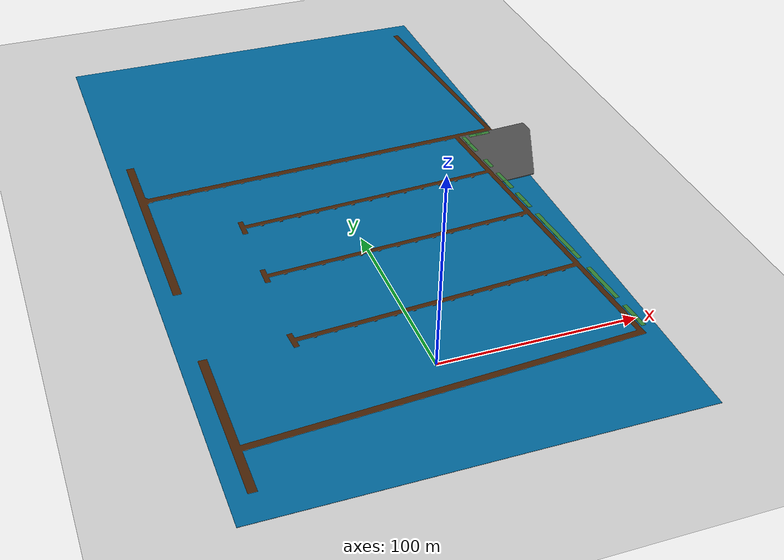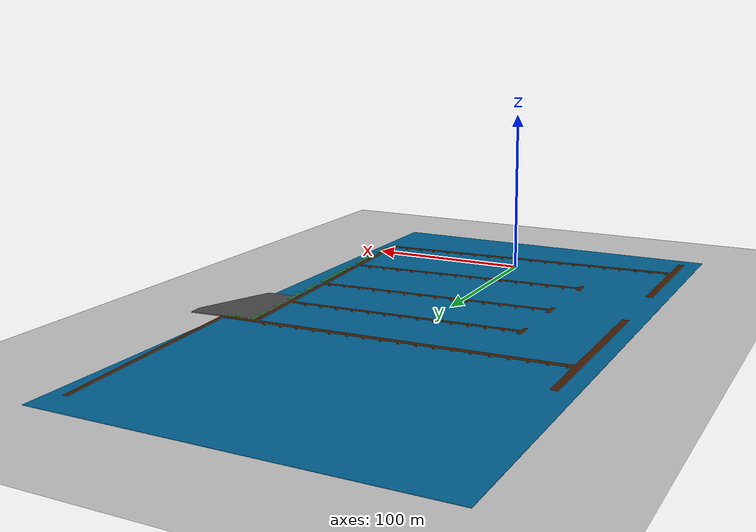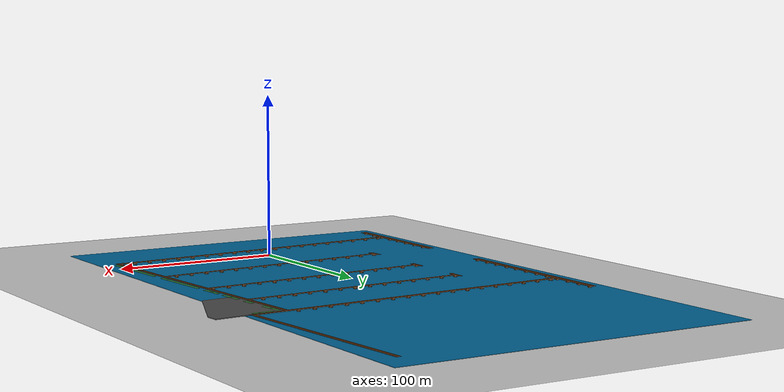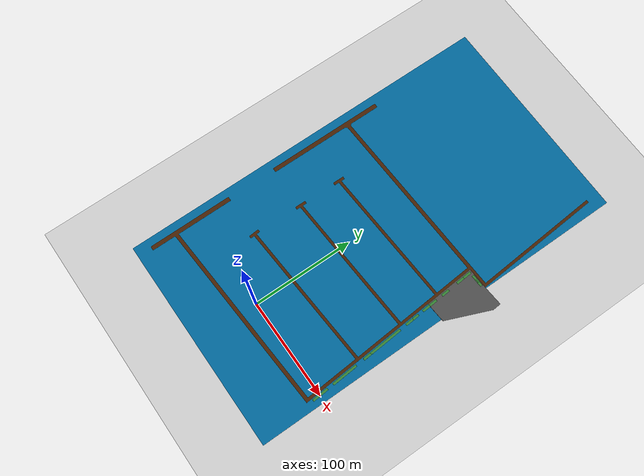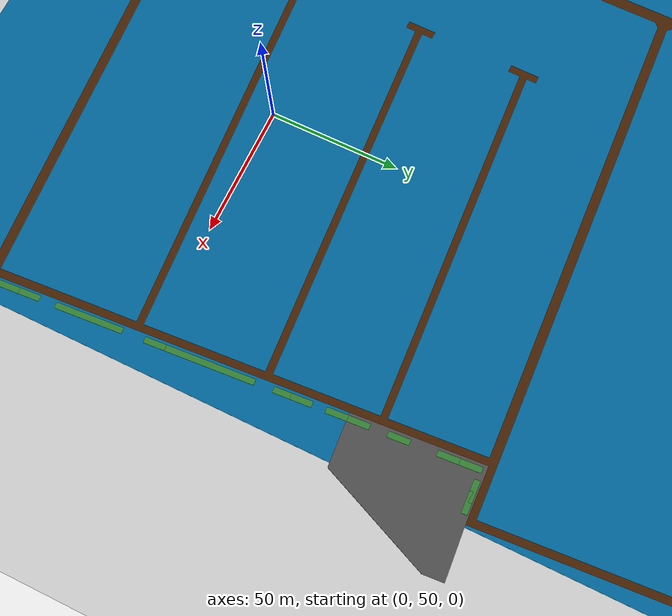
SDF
<?xml version='1.0'?>
<sdf version='1.7'>
  <model name="world_zona_A_environment">
    <static>true</static>
    <pose>0 0 0 0 0 0</pose>

    <include>
      <uri>/marinero_simulations/models/Marina_Zona_A</uri>
      <pose>-100.225000 -48.323200 0.08 0 0 0</pose>
    </include>

    <include>
      <uri>/marinero_simulations/models/sea_plane_A</uri>
      <pose>-1.12 126.455 0 0 0 0</pose>
    </include>

    <include>
      <uri>/marinero_simulations/models/asphalt_plane</uri>
      <name>asphalt_plane_0</name>
      <pose>105.656586 22.996641 0.0 0 0 -1.498</pose>
    </include>

    <include>
      <uri>/marinero_simulations/models/asphalt_plane</uri>
      <name>asphalt_plane_1</name>
      <pose>100.593285 92.427048 0.0 0 0 -1.498</pose>
    </include>

    <include>
      <uri>/marinero_simulations/models/asphalt_plane_angle_section</uri>
      <pose>96.411346 149.332382 0.0 0 0 0</pose>
    </include>

    <include>
      <uri>/marinero_simulations/models/asphalt_plane</uri>
      <name>asphalt_plane_2</name>
      <pose>113.067787 209.915146 0.0 0 0 -1.500000</pose>
    </include>

    <include>
      <uri>/marinero_simulations/models/asphalt_plane</uri>
      <name>asphalt_plane_3</name>
      <pose>108.119179 279.695282 0 0 0 -1.500000</pose>
    </include>

    <include>
      <uri>/marinero_simulations/models/grass_plane_SM</uri>
      <name>grass_0</name>
      <pose>99.5246 -3.165798 0 0 0 0.0925</pose>
    </include>

    <include>
      <uri>/marinero_simulations/models/grass_plane_SM</uri>
      <name>grass_1</name>
      <pose>98.95 4.711878 0 0 0 0.0925</pose>
    </include>

    <include>
      <uri>/marinero_simulations/models/grass_plane_M</uri>
      <name>grass_2</name>
      <pose>97.35 27.6528 0 0 0 0.0925</pose>
    </include>

    <include>
      <uri>/marinero_simulations/models/grass_plane_SM</uri>
      <name>grass_3</name>
      <pose>95.6044 52.7577 0 0 0 0.0925</pose>
    </include>

    <include>
      <uri>/marinero_simulations/models/grass_plane</uri>
      <name>grass_4</name>
      <pose>94.16 72.5637 0 0 0 0.0925</pose>
    </include>

    <include>
      <uri>/marinero_simulations/models/grass_plane_SM</uri>
      <name>grass_5</name>
      <pose>92.0607 100.811 0 0 0 0.0925</pose>
    </include>

    <include>
      <uri>/marinero_simulations/models/grass_plane_SM</uri>
      <name>grass_6</name>
      <pose>91.6 107.127 0 0 0 0.0925</pose>
    </include>

    <include>
      <uri>/marinero_simulations/models/grass_plane_SM</uri>
      <name>grass_7</name>
      <pose>90.676 120.106 0 0 0 0.0925</pose>
    </include>

    <include>
      <uri>/marinero_simulations/models/grass_plane_SM</uri>
      <name>grass_8</name>
      <pose>90.1 128.004425 0 0 0 0.0925</pose>
    </include>

    <include>
      <uri>/marinero_simulations/models/grass_plane_SM</uri>
      <name>grass_9</name>
      <pose>89.10 142.509000 0 0 0 0.0925</pose>
    </include>

    <include>
      <uri>/marinero_simulations/models/grass_plane_SM</uri>
      <name>grass_10</name>
      <pose>87.75 160.180000 0 0 0 0.0925</pose>
    </include>

    <include>
      <uri>/marinero_simulations/models/grass_plane_SM</uri>
      <name>grass_11</name>
      <pose>87.17 168.135000 0 0 0 0.0925</pose>
    </include>

    <include>
      <uri>/marinero_simulations/models/grass_plane_SM</uri>
      <name>grass_12</name>
      <pose>98.691666 172.331558 0 0 0 -1.510000</pose>
    </include>

    <include>
      <uri>/marinero_simulations/models/grass_plane_SM</uri>
      <name>grass_13</name>
      <pose>94.449425 172.158798 0 0 0 -1.510000</pose>
    </include>

  </model>
</sdf>

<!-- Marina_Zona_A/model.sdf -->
<sdf version='1.7'>
  <model name='Marina_Zona_A'>
    <link name='link'>
      <self_collide>0</self_collide>
      <gravity>1</gravity>
      <inertial>
        <mass>100000</mass>
        <pose>0 0 0 0 0 0</pose>
        <inertia>
          <ixx>1</ixx>
          <ixy>0</ixy>
          <ixz>0</ixz>
          <iyy>1</iyy>
          <iyz>0</iyz>
          <izz>1</izz>
        </inertia>
      </inertial>
      <enable_wind>0</enable_wind>
      <kinematic>0</kinematic>
      <pose>0 0 0 0 0 0</pose>
      <visual name='visual'>
        <pose>0 0 0 0 0 0</pose>
        <geometry>
          <mesh>
            <uri>model://Marina_Zona_A/meshes/Marina_Zona_A.stl</uri>
            <scale>1 1 1</scale>
          </mesh>
        </geometry>
        <material>
          <ambient>0.278 0.129 0.02 1</ambient>
          <diffuse>0.278 0.129 0.02 1</diffuse>
          <specular>0.278 0.129 0.02 1</specular>
          <emissive>0 0 0 1</emissive>
          <shader type='pixel'>
            <normal_map>__default__</normal_map>
          </shader>
        </material>
        <transparency>0</transparency>
        <cast_shadows>1</cast_shadows>
      </visual>
      <collision name='collision'>
        <laser_retro>0</laser_retro>
        <max_contacts>10</max_contacts>
        <pose>0 0 0 0 0 0</pose>
        <geometry>
          <mesh>
            <uri>model://Marina_Zona_A/meshes/Marina_Zona_A.stl</uri>
            <scale>1 1 1</scale>
          </mesh>
        </geometry>
        <surface>
          <friction>
            <ode>
              <mu>1.0</mu>
              <mu2>1.0</mu2>
              <fdir1>0 0 0</fdir1>
              <slip1>0.001</slip1>
              <slip2>1e-05</slip2>
            </ode>
            <torsional>
              <coefficient>1</coefficient>
              <patch_radius>0</patch_radius>
              <surface_radius>0</surface_radius>
              <use_patch_radius>1</use_patch_radius>
              <ode>
                <slip>0</slip>
              </ode>
            </torsional>
          </friction>
          <bounce>
            <restitution_coefficient>0</restitution_coefficient>
            <threshold>1000</threshold>
          </bounce>
          <contact>
            <collide_without_contact>0</collide_without_contact>
            <collide_without_contact_bitmask>0</collide_without_contact_bitmask>
            <collide_bitmask>1</collide_bitmask>
            <ode>
              <soft_cfm>0</soft_cfm>
              <soft_erp>0.2</soft_erp>
              <kp>1e+13</kp>
              <kd>10</kd>
              <max_vel>0.01</max_vel>
              <min_depth>0.001</min_depth>
            </ode>
            <bullet>
              <split_impulse>1</split_impulse>
              <split_impulse_penetration_threshold>-0.01</split_impulse_penetration_threshold>
              <soft_cfm>0</soft_cfm>
              <soft_erp>0.2</soft_erp>
              <kp>1e+11</kp>
              <kd>100</kd>
            </bullet>
          </contact>
        </surface>
      </collision>
    </link>
    <static>1</static>
    <allow_auto_disable>1</allow_auto_disable>
  </model>
</sdf>

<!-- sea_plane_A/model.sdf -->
<sdf version='1.7'>
  <model name='sea_plane_A'>
    <link name='link'>
      <self_collide>0</self_collide>
      <enable_wind>0</enable_wind>
      <kinematic>0</kinematic>
      <pose>0 0 0 0 0 0</pose>
      <gravity>1</gravity>
      <inertial>
        <mass>5.27875e+06</mass>
        <pose>0 0 0 0 0 0</pose>
      </inertial>
      <visual name='visual'>
        <cast_shadows>0</cast_shadows>
        <geometry>
          <box>
            <size>215 378 0.25</size>
          </box>
        </geometry>
        <material>
          <ambient>0.0 0.4 0.6 1.0</ambient>
          <diffuse>0.0 0.4 0.6 1.0</diffuse>
          <specular>0.2 0.2 0.2 1.0</specular>
          <pbr>
            <metal>
              <albedo_map>model://sea_plane/materials/textures/sea_plane.jpg</albedo_map>
            </metal>
          </pbr>
        </material>
        <pose>0 0 0 0 -0 0</pose>
        <transparency>0</transparency>
      </visual>
      <collision name='collision'>
        <laser_retro>0</laser_retro>
        <max_contacts>10</max_contacts>
        <pose>0 0 0 0 -0 0</pose>
        <geometry>
          <box>
            <size>215 378 0.25</size>
          </box>
        </geometry>
        <surface>
          <friction>
            <ode>
              <mu>1</mu>
              <mu2>1</mu2>
              <fdir1>0 0 0</fdir1>
              <slip1>0</slip1>
              <slip2>0</slip2>
            </ode>
            <torsional>
              <coefficient>1</coefficient>
              <patch_radius>0</patch_radius>
              <surface_radius>0</surface_radius>
              <use_patch_radius>1</use_patch_radius>
              <ode>
                <slip>0</slip>
              </ode>
            </torsional>
          </friction>
          <bounce>
            <restitution_coefficient>0</restitution_coefficient>
            <threshold>1e+06</threshold>
          </bounce>
          <contact>
            <collide_without_contact>0</collide_without_contact>
            <collide_without_contact_bitmask>1</collide_without_contact_bitmask>
            <collide_bitmask>1</collide_bitmask>
            <ode>
              <soft_cfm>0</soft_cfm>
              <soft_erp>0.2</soft_erp>
              <kp>1e+13</kp>
              <kd>1</kd>
              <max_vel>0.01</max_vel>
              <min_depth>0</min_depth>
            </ode>
            <bullet>
              <split_impulse>1</split_impulse>
              <split_impulse_penetration_threshold>-0.01</split_impulse_penetration_threshold>
              <soft_cfm>0</soft_cfm>
              <soft_erp>0.2</soft_erp>
              <kp>1e+13</kp>
              <kd>1</kd>
            </bullet>
          </contact>
        </surface>
      </collision>
    </link>
    <static>1</static>
    <allow_auto_disable>1</allow_auto_disable>
  </model>
</sdf>

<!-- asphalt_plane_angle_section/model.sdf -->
<sdf version='1.7'>
  <model name='asphalt_plane_angle_section'>
    <link name='link'>
      <self_collide>0</self_collide>
      <gravity>1</gravity>
      <inertial>
        <mass>1</mass>
        <pose>0 0 0 0 0 0</pose>
        <inertia>
          <ixx>1</ixx>
          <ixy>0</ixy>
          <ixz>0</ixz>
          <iyy>1</iyy>
          <iyz>0</iyz>
          <izz>1</izz>
        </inertia>
      </inertial>
      <enable_wind>0</enable_wind>
      <kinematic>0</kinematic>
      <pose>0 0 1.015 0 0 -1.4967</pose>
      <visual name='visual'>
        <pose>0 0 0 0 0 0</pose>
        <geometry>
          <mesh>
            <uri>model://asphalt_plane_angle_section/meshes/asphalt_plane_angle_section.dae</uri>
            <scale>1 1 5</scale>
          </mesh>
        </geometry>
        <material>
          <ambient>0.3 0.3 0.3 1.0</ambient>
          <diffuse>0.3 0.3 0.3 1.0</diffuse>
          <specular>0.1 0.1 0.1 1.0</specular>
        </material>
        <transparency>0</transparency>
        <cast_shadows>1</cast_shadows>
      </visual>
      <collision name='collision'>
        <laser_retro>0</laser_retro>
        <max_contacts>10</max_contacts>
        <pose>0 0 0 0 0 0</pose>
        <geometry>
          <mesh>
            <uri>model://asphalt_plane_angle_section/meshes/asphalt_plane_angle_section.dae</uri>
            <scale>1 1 5</scale>
          </mesh>
        </geometry>
        <surface>
          <friction>
            <ode>
              <mu>1</mu>
              <mu2>1</mu2>
              <fdir1>0 0 0</fdir1>
              <slip1>0.001</slip1>
              <slip2>1e-05</slip2>
            </ode>
            <torsional>
              <coefficient>1</coefficient>
              <patch_radius>0</patch_radius>
              <surface_radius>0</surface_radius>
              <use_patch_radius>1</use_patch_radius>
              <ode>
                <slip>0</slip>
              </ode>
            </torsional>
          </friction>
          <bounce>
            <restitution_coefficient>0</restitution_coefficient>
            <threshold>1e+06</threshold>
          </bounce>
          <contact>
            <collide_without_contact>0</collide_without_contact>
            <collide_without_contact_bitmask>1</collide_without_contact_bitmask>
            <collide_bitmask>1</collide_bitmask>
            <ode>
              <soft_cfm>0</soft_cfm>
              <soft_erp>0.2</soft_erp>
              <kp>1e+13</kp>
              <kd>1</kd>
              <max_vel>0.01</max_vel>
              <min_depth>0</min_depth>
            </ode>
            <bullet>
              <split_impulse>1</split_impulse>
              <split_impulse_penetration_threshold>-0.01</split_impulse_penetration_threshold>
              <soft_cfm>0</soft_cfm>
              <soft_erp>0.2</soft_erp>
              <kp>1e+13</kp>
              <kd>1</kd>
            </bullet>
          </contact>
        </surface>
      </collision>
    </link>
    <static>1</static>
    <allow_auto_disable>1</allow_auto_disable>
  </model>
</sdf>

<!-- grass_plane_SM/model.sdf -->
<sdf version='1.7'>
  <model name='grass_plane_SM'>
    <link name='link'>
      <self_collide>0</self_collide>
      <enable_wind>0</enable_wind>
      <kinematic>0</kinematic>
      <pose>0 0 1.255 0 0 -1.5905</pose>
      <gravity>1</gravity>
      <inertial>
        <mass>1</mass>
        <pose>0 0 0 0 0 0</pose>
        <inertia>
          <ixx>1</ixx>
          <ixy>0</ixy>
          <ixz>0</ixz>
          <iyy>1</iyy>
          <iyz>0</iyz>
          <izz>1</izz>
        </inertia>
      </inertial>
      <visual name='visual'>
        <cast_shadows>0</cast_shadows>
        <geometry>
          <box>
            <size>8 2.25 0.1</size>
          </box>
        </geometry>
        <material>
          <ambient>0.2 0.5 0.2 1</ambient>
          <diffuse>0.2 0.5 0.2 1</diffuse>
          <specular>0.2 0.2 0.2 1</specular>
          <pbr>
            <metal>
              <albedo_map>model://grass_plane/materials/textures/grass.jpg</albedo_map>
            </metal>
          </pbr>
        </material>
        <pose>0 0 0 0 0 0</pose>
        <transparency>0</transparency>
      </visual>
      <collision name='collision'>
        <laser_retro>0</laser_retro>
        <max_contacts>10</max_contacts>
        <pose>0 0 0 0 0 0</pose>
        <geometry>
          <box>
            <size>8 2.25 0.1</size>
          </box>
        </geometry>
        <surface>
          <friction>
            <ode>
              <mu>1</mu>
              <mu2>1</mu2>
              <fdir1>0 0 0</fdir1>
              <slip1>0.001</slip1>
              <slip2>1e-05</slip2>
            </ode>
            <torsional>
              <coefficient>1</coefficient>
              <patch_radius>0</patch_radius>
              <surface_radius>0</surface_radius>
              <use_patch_radius>1</use_patch_radius>
              <ode>
                <slip>0</slip>
              </ode>
            </torsional>
          </friction>
          <bounce>
            <restitution_coefficient>0</restitution_coefficient>
            <threshold>1e+06</threshold>
          </bounce>
          <contact>
            <collide_without_contact>0</collide_without_contact>
            <collide_without_contact_bitmask>1</collide_without_contact_bitmask>
            <collide_bitmask>1</collide_bitmask>
            <ode>
              <soft_cfm>0</soft_cfm>
              <soft_erp>0.2</soft_erp>
              <kp>1e+13</kp>
              <kd>1</kd>
              <max_vel>0.01</max_vel>
              <min_depth>0</min_depth>
            </ode>
            <bullet>
              <split_impulse>1</split_impulse>
              <split_impulse_penetration_threshold>-0.01</split_impulse_penetration_threshold>
              <soft_cfm>0</soft_cfm>
              <soft_erp>0.2</soft_erp>
              <kp>1e+13</kp>
              <kd>1</kd>
            </bullet>
          </contact>
        </surface>
      </collision>
    </link>
    <static>1</static>
    <allow_auto_disable>1</allow_auto_disable>
  </model>
</sdf>

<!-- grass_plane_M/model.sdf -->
<sdf version='1.7'>
  <model name='grass_plane_M'>
    <link name='link'>
      <self_collide>0</self_collide>
      <enable_wind>0</enable_wind>
      <kinematic>0</kinematic>
      <pose>0 0 1.255 0 0 -1.5905</pose>
      <gravity>1</gravity>
      <inertial>
        <mass>1</mass>
        <pose>0 0 0 0 0 0</pose>
        <inertia>
          <ixx>1</ixx>
          <ixy>0</ixy>
          <ixz>0</ixz>
          <iyy>1</iyy>
          <iyz>0</iyz>
          <izz>1</izz>
        </inertia>
      </inertial>
      <visual name='visual'>
        <cast_shadows>0</cast_shadows>
        <geometry>
          <box>
            <size>25.75 2.25 0.1</size>
          </box>
        </geometry>
        <material>
          <ambient>0.2 0.5 0.2 1</ambient>
          <diffuse>0.2 0.5 0.2 1</diffuse>
          <specular>0.2 0.2 0.2 1</specular>
          <pbr>
            <metal>
              <albedo_map>model://grass_plane/materials/textures/grass.jpg</albedo_map>
            </metal>
          </pbr>
        </material>
        <pose>0 0 0 0 0 0</pose>
        <transparency>0</transparency>
      </visual>
      <collision name='collision'>
        <laser_retro>0</laser_retro>
        <max_contacts>10</max_contacts>
        <pose>0 0 0 0 0 0</pose>
        <geometry>
          <box>
            <size>25.75 2.25 0.1</size>
          </box>
        </geometry>
        <surface>
          <friction>
            <ode>
              <mu>1</mu>
              <mu2>1</mu2>
              <fdir1>0 0 0</fdir1>
              <slip1>0.001</slip1>
              <slip2>1e-05</slip2>
            </ode>
            <torsional>
              <coefficient>1</coefficient>
              <patch_radius>0</patch_radius>
              <surface_radius>0</surface_radius>
              <use_patch_radius>1</use_patch_radius>
              <ode>
                <slip>0</slip>
              </ode>
            </torsional>
          </friction>
          <bounce>
            <restitution_coefficient>0</restitution_coefficient>
            <threshold>1e+06</threshold>
          </bounce>
          <contact>
            <collide_without_contact>0</collide_without_contact>
            <collide_without_contact_bitmask>1</collide_without_contact_bitmask>
            <collide_bitmask>1</collide_bitmask>
            <ode>
              <soft_cfm>0</soft_cfm>
              <soft_erp>0.2</soft_erp>
              <kp>1e+13</kp>
              <kd>1</kd>
              <max_vel>0.01</max_vel>
              <min_depth>0</min_depth>
            </ode>
            <bullet>
              <split_impulse>1</split_impulse>
              <split_impulse_penetration_threshold>-0.01</split_impulse_penetration_threshold>
              <soft_cfm>0</soft_cfm>
              <soft_erp>0.2</soft_erp>
              <kp>1e+13</kp>
              <kd>1</kd>
            </bullet>
          </contact>
        </surface>
      </collision>
    </link>
    <static>1</static>
    <allow_auto_disable>1</allow_auto_disable>
  </model>
</sdf>

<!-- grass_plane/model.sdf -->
<sdf version='1.7'>
  <model name='grass_plane'>
    <link name='link'>
      <self_collide>0</self_collide>
      <enable_wind>0</enable_wind>
      <kinematic>0</kinematic>
      <pose>0 0 1.255 0 0 -1.5905</pose>
      <gravity>1</gravity>
      <inertial>
        <mass>1</mass>
        <pose>0 0 0 0 0 0</pose>
        <inertia>
          <ixx>1</ixx>
          <ixy>0</ixy>
          <ixz>0</ixz>
          <iyy>1</iyy>
          <iyz>0</iyz>
          <izz>1</izz>
        </inertia>
      </inertial>
      <visual name='visual'>
        <cast_shadows>0</cast_shadows>
        <geometry>
          <box>
            <size>35 2.25 0.1</size>
          </box>
        </geometry>
        <material>
          <ambient>0.2 0.5 0.2 1</ambient>
          <diffuse>0.2 0.5 0.2 1</diffuse>
          <specular>0.2 0.2 0.2 1</specular>
          <pbr>
            <metal>
              <albedo_map>model://grass_plane/materials/textures/grass.jpg</albedo_map>
            </metal>
          </pbr>
        </material>
        <pose>0 0 0 0 0 0</pose>
        <transparency>0</transparency>
      </visual>
      <collision name='collision'>
        <laser_retro>0</laser_retro>
        <max_contacts>10</max_contacts>
        <pose>0 0 0 0 0 0</pose>
        <geometry>
          <box>
            <size>35 2.25 0.1</size>
          </box>
        </geometry>
        <surface>
          <friction>
            <ode>
              <mu>1</mu>
              <mu2>1</mu2>
              <fdir1>0 0 0</fdir1>
              <slip1>0.001</slip1>
              <slip2>1e-05</slip2>
            </ode>
            <torsional>
              <coefficient>1</coefficient>
              <patch_radius>0</patch_radius>
              <surface_radius>0</surface_radius>
              <use_patch_radius>1</use_patch_radius>
              <ode>
                <slip>0</slip>
              </ode>
            </torsional>
          </friction>
          <bounce>
            <restitution_coefficient>0</restitution_coefficient>
            <threshold>1e+06</threshold>
          </bounce>
          <contact>
            <collide_without_contact>0</collide_without_contact>
            <collide_without_contact_bitmask>1</collide_without_contact_bitmask>
            <collide_bitmask>1</collide_bitmask>
            <ode>
              <soft_cfm>0</soft_cfm>
              <soft_erp>0.2</soft_erp>
              <kp>1e+13</kp>
              <kd>1</kd>
              <max_vel>0.01</max_vel>
              <min_depth>0</min_depth>
            </ode>
            <bullet>
              <split_impulse>1</split_impulse>
              <split_impulse_penetration_threshold>-0.01</split_impulse_penetration_threshold>
              <soft_cfm>0</soft_cfm>
              <soft_erp>0.2</soft_erp>
              <kp>1e+13</kp>
              <kd>1</kd>
            </bullet>
          </contact>
        </surface>
      </collision>
    </link>
    <static>1</static>
    <allow_auto_disable>1</allow_auto_disable>
  </model>
</sdf>
